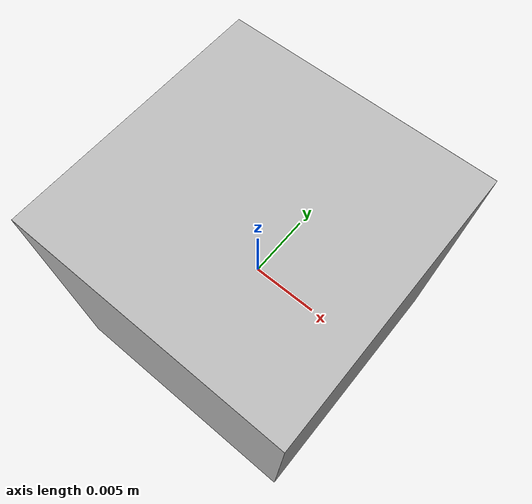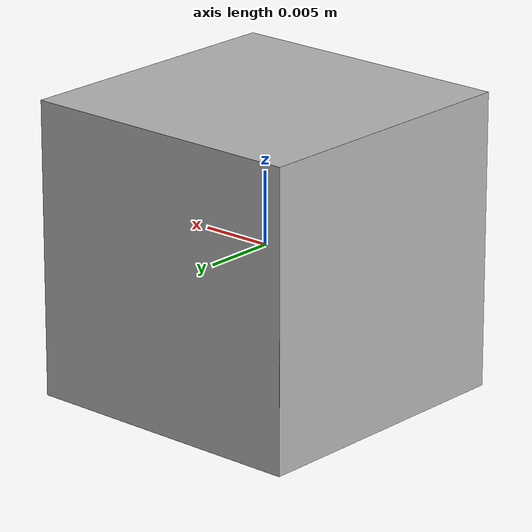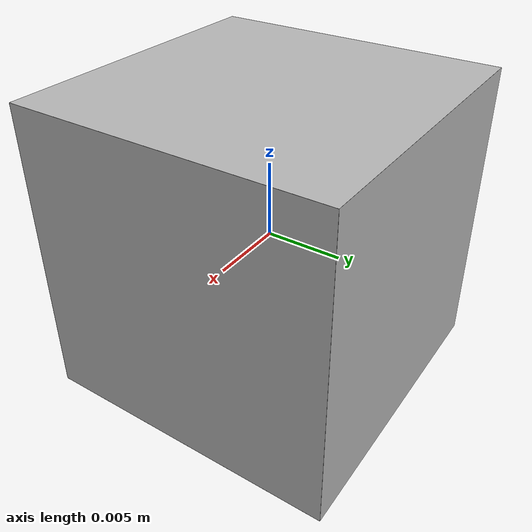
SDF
<?xml version="1.0" ?>
<sdf version="1.6">
  <model name="die">
    <static>false</static>
    <link name="link">

      <inertial>
        <mass>0.010</mass>
        <inertia>
          <ixx>6.67e-08</ixx>  <!-- rolls better: 0.1 * mass / 12.0 * (y*y+z*z) -->
          <ixy>0</ixy>
          <ixz>0</ixz>
          <iyy>6.67e-08</iyy>
          <iyz>0</iyz>
          <izz>6.67e-08</izz>
        </inertia>
      </inertial>

      <collision name="collision">
        <geometry>
          <box>
            <size>0.02 0.02 0.02</size>
          </box>
        </geometry>
         <surface>
           <friction>
             <ode>
               <mu>2.5</mu>
               <mu2>2.5</mu2>
             </ode>
           </friction>
         </surface>

      </collision>

      <visual name="top">
        <pose>-0.01 0 0.01 0 1.571 0</pose>
        <geometry>
          <mesh>
            <uri>model://die/meshes/Marker1.dae</uri>
            <scale>0.001 0.04 0.04</scale>
          </mesh>
        </geometry>
      </visual>
      <visual name="bottom">
        <pose>-0.01 0 -0.01 0 1.571 0</pose>
        <geometry>
          <mesh>
            <uri>model://die/meshes/Marker6.dae</uri>
            <scale>0.001 0.04 0.04</scale>
          </mesh>
        </geometry>
      </visual>
      <visual name="right">
        <pose>0.01 0 -0.01 0 0 0</pose>
        <geometry>
          <mesh>
            <uri>model://die/meshes/Marker2.dae</uri>
            <scale>0.001 0.04 0.04</scale>
          </mesh>
        </geometry>
      </visual>
      <visual name="left">
        <pose>-0.01 0 -0.01 0 0 0</pose>
        <geometry>
          <mesh>
            <uri>model://die/meshes/Marker5.dae</uri>
            <scale>0.001 0.04 0.04</scale>
          </mesh>
        </geometry>
      </visual>
      <visual name="front">
        <pose>0 -0.01 -0.01 0 0 1.571</pose>
        <geometry>
          <mesh>
            <uri>model://die/meshes/Marker3.dae</uri>
            <scale>0.001 0.04 0.04</scale>
          </mesh>
        </geometry>
      </visual>
      <visual name="rear">
        <pose>0 0.01 -0.01 0 0 1.571</pose>
        <geometry>
          <mesh>
            <uri>model://die/meshes/Marker4.dae</uri>
            <scale>0.001 0.04 0.04</scale>
          </mesh>
        </geometry>
      </visual>

    </link>
  </model>
</sdf>
